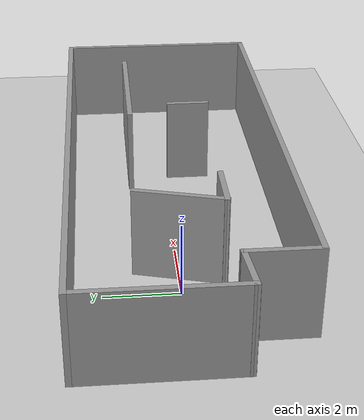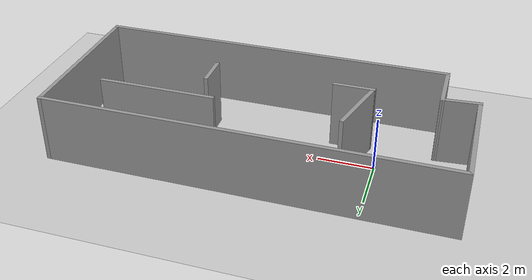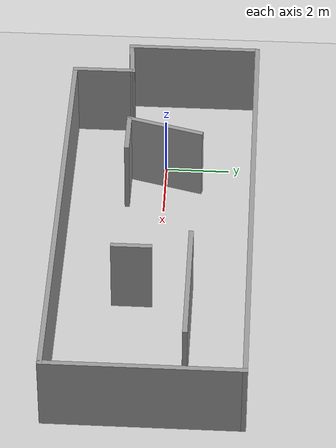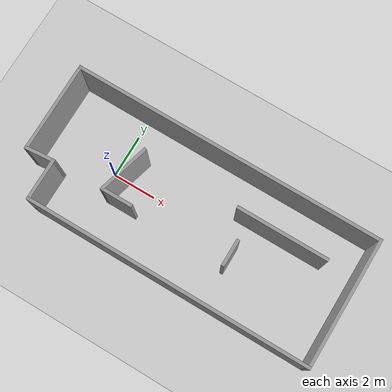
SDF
<sdf version="1.6">
 <world name="default">
  <light name="sun" type="directional">
   <pose>0 0 10 0 -0 0</pose>
   <diffuse>0.8 0.8 0.8 1</diffuse>
   <specular>0.2 0.2 0.2 1</specular>
   <attenuation>
    <range>1000</range>
    <constant>0.9</constant>
    <linear>0.01</linear>
    <quadratic>0.001</quadratic>
   </attenuation>
   <direction>-0.5 0.1 -0.9</direction>
  </light>
  <model name="ground_plane">
   <static>1</static>
   <link name="link">
    <collision name="collision">
     <geometry><plane><normal>0 0 1</normal><size>100 100</size></plane></geometry>
     <surface>
      <contact><collide_bitmask>65535</collide_bitmask></contact>
      <friction><ode><mu>100</mu><mu2>50</mu2></ode></friction>
     </surface>
    </collision>
    <visual name="visual">
     <cast_shadows>0</cast_shadows>
     <geometry><plane><normal>0 0 1</normal><size>100 100</size></plane></geometry>
     <material>
      <script><uri>file://media/materials/scripts/gazebo.material</uri><name>Gazebo/Grey</name></script>
     </material>
    </visual>
   </link>
  </model>
  <gravity>0 0 -9.8</gravity>
  <magnetic_field>6e-06 2.3e-05 -4.2e-05</magnetic_field>
  <atmosphere type="adiabatic"/>
  <physics name="default_physics" default="0" type="ode">
   <max_step_size>0.001</max_step_size>
   <real_time_factor>1</real_time_factor>
   <real_time_update_rate>1000</real_time_update_rate>
  </physics>
  <scene><ambient>0.4 0.4 0.4 1</ambient><background>0.7 0.7 0.7 1</background><shadows>1</shadows></scene>
  <audio><device>default</device></audio>
  <spherical_coordinates>
   <surface_model>EARTH_WGS84</surface_model>
   <latitude_deg>0</latitude_deg>
   <longitude_deg>0</longitude_deg>
   <elevation>0</elevation>
   <heading_deg>0</heading_deg>
  </spherical_coordinates>
  <model name="prueba">
   <pose>3.98213 -0.125 0 0 -0 0</pose>
   <link name="Wall_0">
    <collision name="Wall_0_Collision">
     <geometry><box><size>2 0.15 2.5</size></box></geometry>
     <pose>0 0 1.25 0 -0 0</pose>
    </collision>
    <visual name="Wall_0_Visual">
     <pose>0 0 1.25 0 -0 0</pose>
     <geometry><box><size>2 0.15 2.5</size></box></geometry>
     <material>
      <script><uri>file://media/materials/scripts/gazebo.material</uri><name>Gazebo/Grey</name></script>
      <ambient>1 1 1 1</ambient>
     </material>
     <meta><layer>0</layer></meta>
    </visual>
    <pose>-5.92213 -2 0 0 -0 -1.5708</pose>
   </link>
   <link name="Wall_1">
    <collision name="Wall_1_Collision">
     <geometry><box><size>13.25 0.15 2.5</size></box></geometry>
     <pose>0 0 1.25 0 -0 0</pose>
    </collision>
    <visual name="Wall_1_Visual">
     <pose>0 0 1.25 0 -0 0</pose>
     <geometry><box><size>13.25 0.15 2.5</size></box></geometry>
     <material>
      <script><uri>file://media/materials/scripts/gazebo.material</uri><name>Gazebo/Grey</name></script>
      <ambient>1 1 1 1</ambient>
     </material>
     <meta><layer>0</layer></meta>
    </visual>
    <pose>0.627871 -2.925 0 0 -0 0</pose>
   </link>
   <link name="Wall_10">
    <collision name="Wall_10_Collision">
     <geometry><box><size>1.25 0.15 2.5</size></box></geometry>
     <pose>0 0 1.25 0 -0 0</pose>
    </collision>
    <visual name="Wall_10_Visual">
     <pose>0 0 1.25 0 -0 0</pose>
     <geometry><box><size>1.25 0.15 2.5</size></box></geometry>
     <material>
      <script><uri>file://media/materials/scripts/gazebo.material</uri><name>Gazebo/Grey</name></script>
      <ambient>1 1 1 1</ambient>
     </material>
     <meta><layer>0</layer></meta>
    </visual>
    <pose>2.25122 -0.612339 0 0 -0 -1.5708</pose>
   </link>
   <link name="Wall_12">
    <collision name="Wall_12_Collision">
     <geometry><box><size>4.25 0.15 2.5</size></box></geometry>
     <pose>0 0 1.25 0 -0 0</pose>
    </collision>
    <visual name="Wall_12_Visual">
     <pose>0 0 1.25 0 -0 0</pose>
     <geometry><box><size>4.25 0.15 2.5</size></box></geometry>
     <material>
      <script><uri>file://media/materials/scripts/gazebo.material</uri><name>Gazebo/Grey</name></script>
      <ambient>1 1 1 1</ambient>
     </material>
     <meta><layer>0</layer></meta>
    </visual>
    <pose>3.64988 1.14728 0 0 -0 0</pose>
   </link>
   <link name="Wall_2">
    <collision name="Wall_2_Collision">
     <geometry><box><size>6 0.15 2.5</size></box></geometry>
     <pose>0 0 1.25 0 -0 0</pose>
    </collision>
    <visual name="Wall_2_Visual">
     <pose>0 0 1.25 0 -0 0</pose>
     <geometry><box><size>6 0.15 2.5</size></box></geometry>
     <material>
      <script><uri>file://media/materials/scripts/gazebo.material</uri><name>Gazebo/Grey</name></script>
      <ambient>1 1 1 1</ambient>
     </material>
     <meta><layer>0</layer></meta>
    </visual>
    <pose>7.17787 0 0 0 -0 1.5708</pose>
   </link>
   <link name="Wall_3">
    <collision name="Wall_3_Collision">
     <geometry><box><size>14.5 0.15 2.5</size></box></geometry>
     <pose>0 0 1.25 0 -0 0</pose>
    </collision>
    <visual name="Wall_3_Visual">
     <pose>0 0 1.25 0 -0 0</pose>
     <geometry><box><size>14.5 0.15 2.5</size></box></geometry>
     <material>
      <script><uri>file://media/materials/scripts/gazebo.material</uri><name>Gazebo/Grey</name></script>
      <ambient>1 1 1 1</ambient>
     </material>
     <meta><layer>0</layer></meta>
    </visual>
    <pose>0.002871 2.925 0 0 -0 3.14159</pose>
   </link>
   <link name="Wall_4">
    <collision name="Wall_4_Collision">
     <geometry><box><size>4.25 0.15 2.5</size></box></geometry>
     <pose>0 0 1.25 0 -0 0</pose>
    </collision>
    <visual name="Wall_4_Visual">
     <pose>0 0 1.25 0 -0 0</pose>
     <geometry><box><size>4.25 0.15 2.5</size></box></geometry>
     <material>
      <script><uri>file://media/materials/scripts/gazebo.material</uri><name>Gazebo/Grey</name></script>
      <ambient>1 1 1 1</ambient>
     </material>
     <meta><layer>0</layer></meta>
    </visual>
    <pose>-7.17213 0.875 0 0 -0 -1.5708</pose>
   </link>
   <link name="Wall_5">
    <collision name="Wall_5_Collision">
     <geometry><box><size>1.40399 0.15 2.5</size></box></geometry>
     <pose>0 0 1.25 0 -0 0</pose>
    </collision>
    <visual name="Wall_5_Visual">
     <pose>0 0 1.25 0 -0 0</pose>
     <geometry><box><size>1.40399 0.15 2.5</size></box></geometry>
     <material>
      <script><uri>file://media/materials/scripts/gazebo.material</uri><name>Gazebo/Grey</name></script>
      <ambient>1 1 1 1</ambient>
     </material>
     <meta><layer>0</layer></meta>
    </visual>
    <pose>-6.54713 -1.125 0 0 -0 0.07983</pose>
   </link>
   <link name="Wall_7">
    <collision name="Wall_7_Collision">
     <geometry><box><size>2.5 0.15 2.5</size></box></geometry>
     <pose>0 0 1.25 0 -0 0</pose>
    </collision>
    <visual name="Wall_7_Visual">
     <pose>0 0 1.25 0 -0 0</pose>
     <geometry><box><size>2.5 0.15 2.5</size></box></geometry>
     <material>
      <script><uri>file://media/materials/scripts/gazebo.material</uri><name>Gazebo/Grey</name></script>
      <ambient>1 1 1 1</ambient>
     </material>
     <meta><layer>0</layer></meta>
    </visual>
    <pose>-3.26357 0.105368 0 0 -0 -1.8326</pose>
   </link>
   <link name="Wall_8">
    <collision name="Wall_8_Collision">
     <geometry><box><size>1.5 0.15 2.5</size></box></geometry>
     <pose>0 0 1.25 0 -0 0</pose>
    </collision>
    <visual name="Wall_8_Visual">
     <pose>0 0 1.25 0 -0 0</pose>
     <geometry><box><size>1.5 0.15 2.5</size></box></geometry>
     <material>
      <script><uri>file://media/materials/scripts/gazebo.material</uri><name>Gazebo/Grey</name></script>
      <ambient>1 1 1 1</ambient>
     </material>
     <meta><layer>0</layer></meta>
    </visual>
    <pose>-2.89268 -1.0296 0 0 -0 0</pose>
   </link>
   <static>1</static>
  </model>
 </world>
</sdf>
